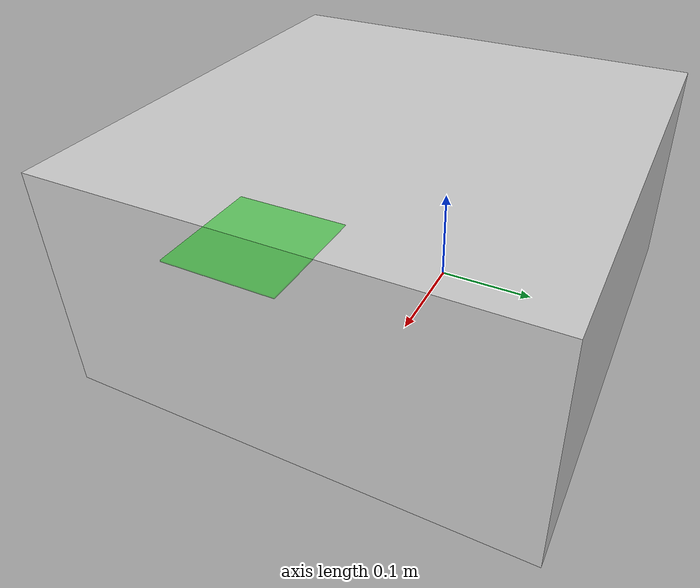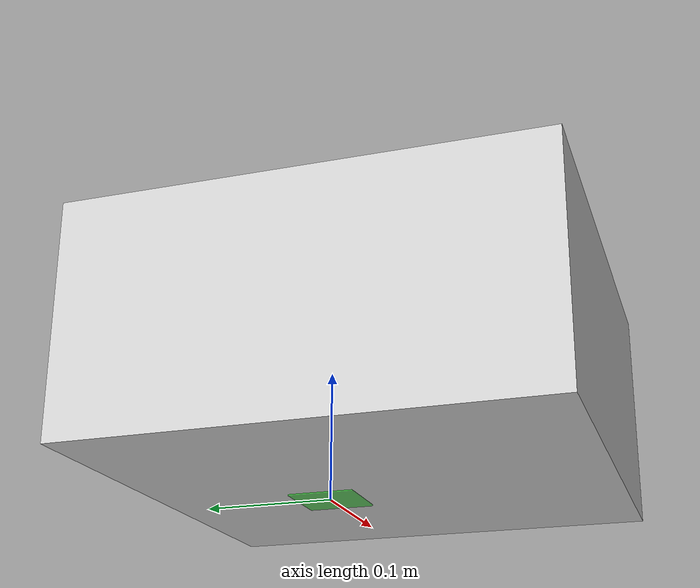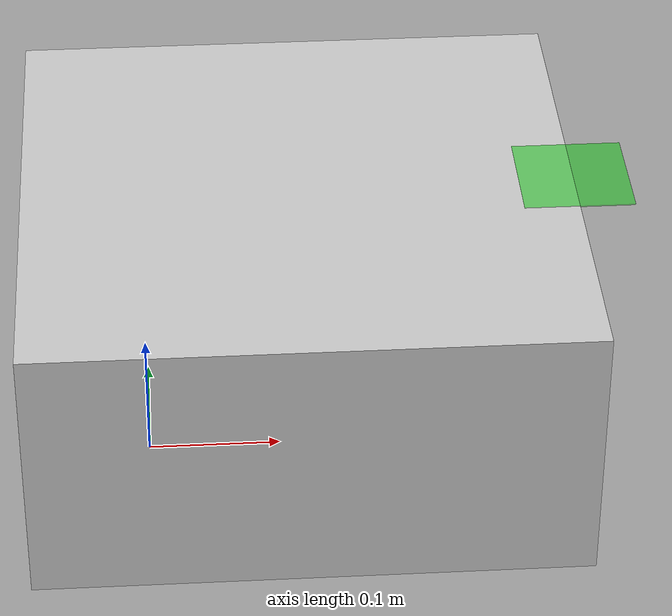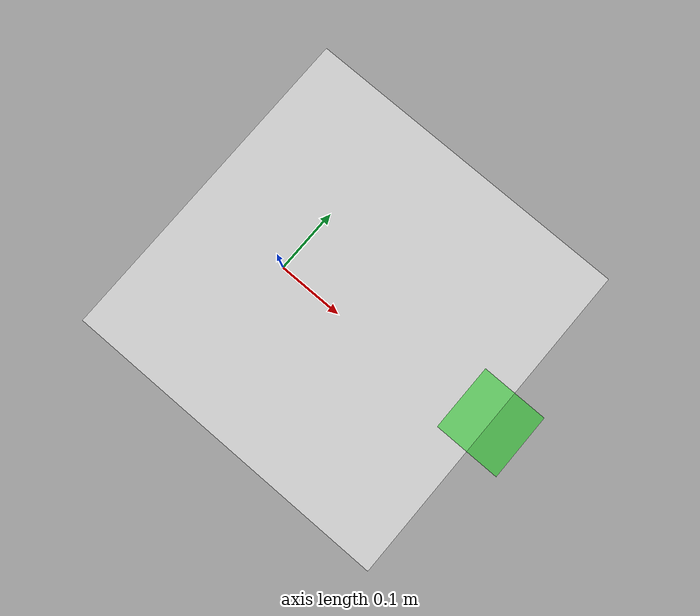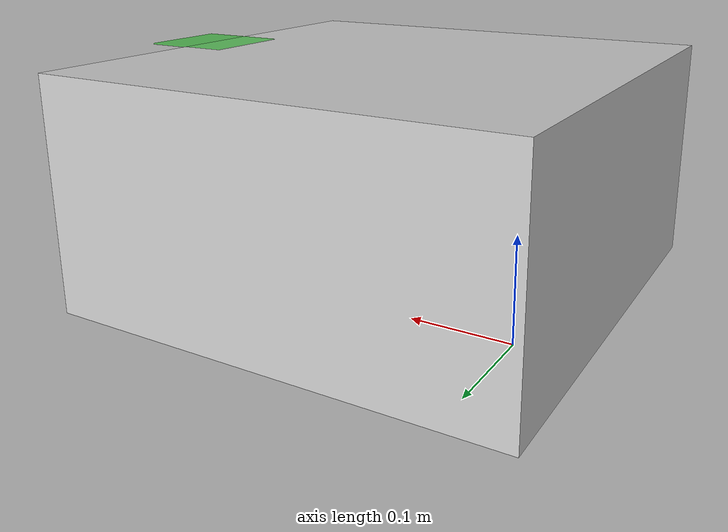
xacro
<?xml version="1.0"?>

<robot name="box_robot" xmlns:xacro="http://ros.org/wiki/xacro">

    <!-- Define a number of dimensions using properties -->
    <xacro:property name="torso_offset_x" value="0.0"/>
    <xacro:property name="torso_offset_y" value="0.0"/>
    <xacro:property name="torso_offset_z" value="0.23"/> <!--base_height/2+torso_height/2 -->

    <!-- Include all component files -->
    <xacro:include filename="$(find dashgo_description)/urdf/dashgobase/materials.urdf.xacro"/>
    <xacro:include filename="$(find dashgo_description)/urdf/dashgobase/base.urdf.xacro"/>
    <xacro:include filename="$(find dashgo_description)/urdf/dashgobase/torso.urdf.xacro"/>

    <!-- Add the base and wheels -->
    <base name="base" color="Black"/>

    <!-- Attach the torso -->

    <link name="front_flag">
        <visual>
            <origin xyz="0 0 0" rpy="0 0 0"/>
            <geometry>
                <box size="0.08 0.08 0.001"/>
            </geometry>
            <material name="TransparentGreen"/>
        </visual>
    </link>

    <joint name="front_point_flag" type="fixed">
        <origin xyz="0.2 0 ${base_length/2}" rpy="0 0 0"/>
        <parent link="base_link"/>
        <child link="front_flag"/>
    </joint>

</robot>

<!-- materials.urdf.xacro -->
<robot>

    <!-- Put all the color definitions in a separate file -->

    <material name="Black">
        <color rgba="0.2 0.2 0.2 1.0"/>
    </material>

    <material name="TransparentBlack">
        <color rgba="0.2 0.2 0.2 0.8"/>
    </material>

    <material name="Orange">
        <color rgba="1.0  0.55 0.0 1.0"/>
    </material>

    <material name="Grey">
        <color rgba="0.7 0.7 0.7 1.0"/>
    </material>

    <material name="DarkGrey">
        <color rgba="0.3 0.3 0.3 1.0"/>
    </material>

    <material name="Red">
        <color rgba="0.8 0.0 0.0 1.0"/>
    </material>

    <material name="White">
        <color rgba="1.0 1.0 1.0 1.0"/>
    </material>

    <material name="OffWhite">
        <color rgba="0.8 0.8 0.8 1.0"/>
    </material>

    <material name="Blue">
        <color rgba="0.0 0.0 0.8 1.0"/>
    </material>

    <material name="Green">
        <color rgba="0.0 0.8 0.0 1.0"/>
    </material>

    <material name="TransparentGreen">
        <color rgba="0.0 0.8 0.0 0.5"/>
    </material>

</robot>

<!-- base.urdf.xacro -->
<robot name="base" xmlns:xacro="http://ros.org/wiki/xacro">

    <!-- Define a number of dimensions using properties -->
    <xacro:property name="base_x" value="0.40"/>
    <xacro:property name="base_y" value="0.40"/>
    <xacro:property name="base_length" value="0.20"/>
    <xacro:property name="wheel_length" value="0.046"/>
    <xacro:property name="wheel_radius" value="0.062"/>
    <xacro:property name="wheel_offset_x" value="-0.08"/>
    <xacro:property name="wheel_offset_y" value="0.176"/>
    <xacro:property name="wheel_offset_z" value="-0.038"/>

    <xacro:property name="PI" value="3.1415926"/>

    <!-- define a wheel -->
    <xacro:macro name="wheel" params="suffix parent reflect color">
        <joint name="${parent}_${suffix}_wheel_joint" type="continuous">
            <axis xyz="0 0 1"/>
            <limit effort="100" velocity="100"/>
            <safety_controller k_velocity="10"/>
            <origin xyz="${wheel_offset_x} ${reflect*wheel_offset_y} ${wheel_offset_z}" rpy="${reflect*PI/2} 0 0"/>
            <parent link="${parent}_link"/>
            <child link="${parent}_${suffix}_wheel_link"/>
        </joint>
        <link name="${parent}_${suffix}_wheel_link">
            <visual>
                <origin xyz="0 0 0" rpy="0 0 0"/>
                <geometry>
                    <cylinder radius="${wheel_radius}" length="${wheel_length}"/>
                </geometry>
                <material name="${color}"/>
            </visual>
        </link>
    </xacro:macro>

    <!-- The base xacro macro -->
    <xacro:macro name="base" params="name color">
        <link name="${name}_link">

            <visual>
                <origin xyz="0 0 0" rpy="0 0 0"/>
                <geometry>
                    <box size="${base_x} ${base_y} ${base_length}"/>
                </geometry>
                <material name="iRobot/LightGrey"/>
            </visual>
            <collision>
                <origin xyz="0 0 0" rpy="0 0 0"/>
                <geometry>
                    <box size="${base_x} ${base_y} ${base_length}"/>
                </geometry>
            </collision>
        </link>
    </xacro:macro>

    <link name="base_footprint">
        <visual>
            <origin xyz="0 0 0" rpy="0 0 0"/>
            <geometry>
                <box size="0.05 0.05 0.001"/>
            </geometry>
            <material name="TransparentGreen"/>
        </visual>
    </link>

    <joint name="base_joint" type="fixed">
        <origin xyz="0.115 0 ${base_length/2 - wheel_offset_z}" rpy="0 0 0"/>
        <parent link="base_footprint"/>
        <child link="base_link"/>
    </joint>

    <!-- Add the drive wheels -->
    <wheel parent="base" suffix="l" reflect="1" color="Orange"/>
    <wheel parent="base" suffix="r" reflect="-1" color="Orange"/>

</robot>
